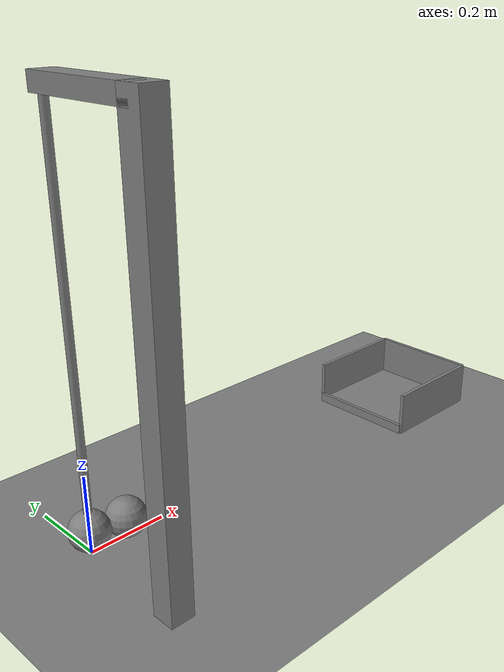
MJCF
<mujoco model="pendulum_fixture">
  <option timestep="0.002"/>
  <worldbody>
    <geom name="floor" type="plane" size="4 4 0.1" friction="0.8 0.005 0.002"/>
    <geom name="post" type="box" pos="0 -0.3 0.525" size="0.03 0.03 0.525"/>
    <geom name="post_arm" type="box" pos="0 -0.15 1.03" size="0.03 0.15 0.02"/>
    <body name="pendulum" pos="0 0 1.01">
      <joint name="pivot" type="hinge" axis="0 1 0" damping="0.01"/>
      <geom name="pendulum_rod" type="capsule" fromto="0 0 0 0 0 -0.9" size="0.01" mass="0.1"/>
      <geom name="pendulum_bob" type="sphere" pos="0 0 -0.95" size="0.05" mass="1.0"/>
    </body>
    <body name="ball" pos="0.1 0 0.05">
      <freejoint/>
      <geom name="ball" type="sphere" size="0.05" mass="0.2" condim="6" friction="0.8 0.01 0.004"/>
    </body>
    <body name="cup" pos="1.1 0 0">
      <geom name="cup_base" type="box" pos="0 0 0.005" size="0.15 0.15 0.005"/>
      <geom name="cup_lip" type="box" pos="-0.15 0 0.0125" size="0.005 0.15 0.0125"/>
      <geom name="cup_far" type="box" pos="0.15 0 0.06" size="0.005 0.15 0.06"/>
      <geom name="cup_left" type="box" pos="0 0.15 0.06" size="0.15 0.005 0.06"/>
      <geom name="cup_right" type="box" pos="0 -0.15 0.06" size="0.15 0.005 0.06"/>
    </body>
  </worldbody>
  <keyframe>
    <key name="start" qpos="1.1 0.1 0 0.05 1 0 0 0"/>
  </keyframe>
</mujoco>
